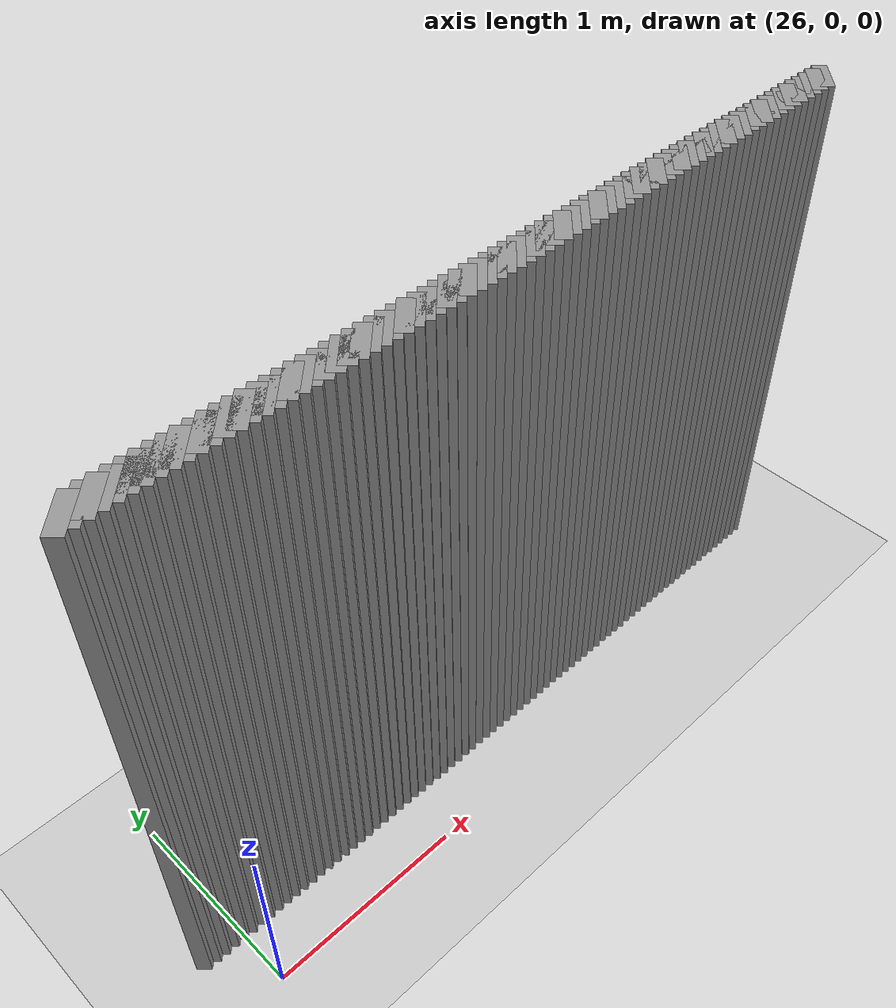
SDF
<sdf version="1.5">
 <world name="default">
  <include><uri>model://ground_plane</uri></include>
  <include><uri>model://sun</uri></include>
  <model name="grey_wall_5279">
   <static>1</static>
   <link name="link">
    <pose>25.85 0.35  1.4 0 0 -0.785398163397</pose>
    <collision name="collision"><geometry><box><size>0.0707106781187 .2  2.8</size></box></geometry></collision>
    <visual name="visual">
     <cast_shadows>0</cast_shadows>
     <geometry><box><size>0.0707106781187 .2  2.8</size></box></geometry>
     <material>
      <script>
       <uri>model://grey_wall/materials/scripts</uri>
       <uri>model://grey_wall/materials/textures</uri>
       <name>vrc/grey_wall</name>
      </script>
     </material>
    </visual>
   </link>
  </model>
  <model name="grey_wall_5280">
   <static>1</static>
   <link name="link">
    <pose>25.9 0.35  1.4 0 0 -0.785398163397</pose>
    <collision name="collision"><geometry><box><size>0.0707106781187 .2  2.8</size></box></geometry></collision>
    <visual name="visual">
     <cast_shadows>0</cast_shadows>
     <geometry><box><size>0.0707106781187 .2  2.8</size></box></geometry>
     <material>
      <script>
       <uri>model://grey_wall/materials/scripts</uri>
       <uri>model://grey_wall/materials/textures</uri>
       <name>vrc/grey_wall</name>
      </script>
     </material>
    </visual>
   </link>
  </model>
  <model name="grey_wall_5281">
   <static>1</static>
   <link name="link">
    <pose>25.95 0.35  1.4 0 0 -0.785398163397</pose>
    <collision name="collision"><geometry><box><size>0.0707106781187 .2  2.8</size></box></geometry></collision>
    <visual name="visual">
     <cast_shadows>0</cast_shadows>
     <geometry><box><size>0.0707106781187 .2  2.8</size></box></geometry>
     <material>
      <script>
       <uri>model://grey_wall/materials/scripts</uri>
       <uri>model://grey_wall/materials/textures</uri>
       <name>vrc/grey_wall</name>
      </script>
     </material>
    </visual>
   </link>
  </model>
  <model name="grey_wall_5282">
   <static>1</static>
   <link name="link">
    <pose>26.0 0.35  1.4 0 0 -0.785398163397</pose>
    <collision name="collision"><geometry><box><size>0.0707106781187 .2  2.8</size></box></geometry></collision>
    <visual name="visual">
     <cast_shadows>0</cast_shadows>
     <geometry><box><size>0.0707106781187 .2  2.8</size></box></geometry>
     <material>
      <script>
       <uri>model://grey_wall/materials/scripts</uri>
       <uri>model://grey_wall/materials/textures</uri>
       <name>vrc/grey_wall</name>
      </script>
     </material>
    </visual>
   </link>
  </model>
  <model name="grey_wall_5283">
   <static>1</static>
   <link name="link">
    <pose>26.05 0.35  1.4 0 0 -0.785398163397</pose>
    <collision name="collision"><geometry><box><size>0.0707106781187 .2  2.8</size></box></geometry></collision>
    <visual name="visual">
     <cast_shadows>0</cast_shadows>
     <geometry><box><size>0.0707106781187 .2  2.8</size></box></geometry>
     <material>
      <script>
       <uri>model://grey_wall/materials/scripts</uri>
       <uri>model://grey_wall/materials/textures</uri>
       <name>vrc/grey_wall</name>
      </script>
     </material>
    </visual>
   </link>
  </model>
  <model name="grey_wall_5284">
   <static>1</static>
   <link name="link">
    <pose>26.1 0.35  1.4 0 0 -0.785398163397</pose>
    <collision name="collision"><geometry><box><size>0.0707106781187 .2  2.8</size></box></geometry></collision>
    <visual name="visual">
     <cast_shadows>0</cast_shadows>
     <geometry><box><size>0.0707106781187 .2  2.8</size></box></geometry>
     <material>
      <script>
       <uri>model://grey_wall/materials/scripts</uri>
       <uri>model://grey_wall/materials/textures</uri>
       <name>vrc/grey_wall</name>
      </script>
     </material>
    </visual>
   </link>
  </model>
  <model name="grey_wall_5285">
   <static>1</static>
   <link name="link">
    <pose>26.15 0.35  1.4 0 0 -0.785398163397</pose>
    <collision name="collision"><geometry><box><size>0.0707106781187 .2  2.8</size></box></geometry></collision>
    <visual name="visual">
     <cast_shadows>0</cast_shadows>
     <geometry><box><size>0.0707106781187 .2  2.8</size></box></geometry>
     <material>
      <script>
       <uri>model://grey_wall/materials/scripts</uri>
       <uri>model://grey_wall/materials/textures</uri>
       <name>vrc/grey_wall</name>
      </script>
     </material>
    </visual>
   </link>
  </model>
  <model name="grey_wall_5286">
   <static>1</static>
   <link name="link">
    <pose>26.2 0.35  1.4 0 0 -0.785398163397</pose>
    <collision name="collision"><geometry><box><size>0.0707106781187 .2  2.8</size></box></geometry></collision>
    <visual name="visual">
     <cast_shadows>0</cast_shadows>
     <geometry><box><size>0.0707106781187 .2  2.8</size></box></geometry>
     <material>
      <script>
       <uri>model://grey_wall/materials/scripts</uri>
       <uri>model://grey_wall/materials/textures</uri>
       <name>vrc/grey_wall</name>
      </script>
     </material>
    </visual>
   </link>
  </model>
  <model name="grey_wall_5287">
   <static>1</static>
   <link name="link">
    <pose>26.25 0.35  1.4 0 0 -0.785398163397</pose>
    <collision name="collision"><geometry><box><size>0.0707106781187 .2  2.8</size></box></geometry></collision>
    <visual name="visual">
     <cast_shadows>0</cast_shadows>
     <geometry><box><size>0.0707106781187 .2  2.8</size></box></geometry>
     <material>
      <script>
       <uri>model://grey_wall/materials/scripts</uri>
       <uri>model://grey_wall/materials/textures</uri>
       <name>vrc/grey_wall</name>
      </script>
     </material>
    </visual>
   </link>
  </model>
  <model name="grey_wall_5288">
   <static>1</static>
   <link name="link">
    <pose>26.3 0.35  1.4 0 0 -0.785398163397</pose>
    <collision name="collision"><geometry><box><size>0.0707106781187 .2  2.8</size></box></geometry></collision>
    <visual name="visual">
     <cast_shadows>0</cast_shadows>
     <geometry><box><size>0.0707106781187 .2  2.8</size></box></geometry>
     <material>
      <script>
       <uri>model://grey_wall/materials/scripts</uri>
       <uri>model://grey_wall/materials/textures</uri>
       <name>vrc/grey_wall</name>
      </script>
     </material>
    </visual>
   </link>
  </model>
  <model name="grey_wall_5289">
   <static>1</static>
   <link name="link">
    <pose>26.35 0.35  1.4 0 0 -0.785398163397</pose>
    <collision name="collision"><geometry><box><size>0.0707106781187 .2  2.8</size></box></geometry></collision>
    <visual name="visual">
     <cast_shadows>0</cast_shadows>
     <geometry><box><size>0.0707106781187 .2  2.8</size></box></geometry>
     <material>
      <script>
       <uri>model://grey_wall/materials/scripts</uri>
       <uri>model://grey_wall/materials/textures</uri>
       <name>vrc/grey_wall</name>
      </script>
     </material>
    </visual>
   </link>
  </model>
  <model name="grey_wall_5290">
   <static>1</static>
   <link name="link">
    <pose>26.4 0.35  1.4 0 0 -0.785398163397</pose>
    <collision name="collision"><geometry><box><size>0.0707106781187 .2  2.8</size></box></geometry></collision>
    <visual name="visual">
     <cast_shadows>0</cast_shadows>
     <geometry><box><size>0.0707106781187 .2  2.8</size></box></geometry>
     <material>
      <script>
       <uri>model://grey_wall/materials/scripts</uri>
       <uri>model://grey_wall/materials/textures</uri>
       <name>vrc/grey_wall</name>
      </script>
     </material>
    </visual>
   </link>
  </model>
  <model name="grey_wall_5291">
   <static>1</static>
   <link name="link">
    <pose>26.45 0.35  1.4 0 0 -0.785398163397</pose>
    <collision name="collision"><geometry><box><size>0.0707106781187 .2  2.8</size></box></geometry></collision>
    <visual name="visual">
     <cast_shadows>0</cast_shadows>
     <geometry><box><size>0.0707106781187 .2  2.8</size></box></geometry>
     <material>
      <script>
       <uri>model://grey_wall/materials/scripts</uri>
       <uri>model://grey_wall/materials/textures</uri>
       <name>vrc/grey_wall</name>
      </script>
     </material>
    </visual>
   </link>
  </model>
  <model name="grey_wall_5292">
   <static>1</static>
   <link name="link">
    <pose>26.5 0.35  1.4 0 0 -0.785398163397</pose>
    <collision name="collision"><geometry><box><size>0.0707106781187 .2  2.8</size></box></geometry></collision>
    <visual name="visual">
     <cast_shadows>0</cast_shadows>
     <geometry><box><size>0.0707106781187 .2  2.8</size></box></geometry>
     <material>
      <script>
       <uri>model://grey_wall/materials/scripts</uri>
       <uri>model://grey_wall/materials/textures</uri>
       <name>vrc/grey_wall</name>
      </script>
     </material>
    </visual>
   </link>
  </model>
  <model name="grey_wall_5293">
   <static>1</static>
   <link name="link">
    <pose>26.55 0.35  1.4 0 0 -0.785398163397</pose>
    <collision name="collision"><geometry><box><size>0.0707106781187 .2  2.8</size></box></geometry></collision>
    <visual name="visual">
     <cast_shadows>0</cast_shadows>
     <geometry><box><size>0.0707106781187 .2  2.8</size></box></geometry>
     <material>
      <script>
       <uri>model://grey_wall/materials/scripts</uri>
       <uri>model://grey_wall/materials/textures</uri>
       <name>vrc/grey_wall</name>
      </script>
     </material>
    </visual>
   </link>
  </model>
  <model name="grey_wall_5294">
   <static>1</static>
   <link name="link">
    <pose>26.6 0.35  1.4 0 0 -0.785398163397</pose>
    <collision name="collision"><geometry><box><size>0.0707106781187 .2  2.8</size></box></geometry></collision>
    <visual name="visual">
     <cast_shadows>0</cast_shadows>
     <geometry><box><size>0.0707106781187 .2  2.8</size></box></geometry>
     <material>
      <script>
       <uri>model://grey_wall/materials/scripts</uri>
       <uri>model://grey_wall/materials/textures</uri>
       <name>vrc/grey_wall</name>
      </script>
     </material>
    </visual>
   </link>
  </model>
  <model name="grey_wall_5295">
   <static>1</static>
   <link name="link">
    <pose>26.65 0.35  1.4 0 0 -0.785398163397</pose>
    <collision name="collision"><geometry><box><size>0.0707106781187 .2  2.8</size></box></geometry></collision>
    <visual name="visual">
     <cast_shadows>0</cast_shadows>
     <geometry><box><size>0.0707106781187 .2  2.8</size></box></geometry>
     <material>
      <script>
       <uri>model://grey_wall/materials/scripts</uri>
       <uri>model://grey_wall/materials/textures</uri>
       <name>vrc/grey_wall</name>
      </script>
     </material>
    </visual>
   </link>
  </model>
  <model name="grey_wall_5296">
   <static>1</static>
   <link name="link">
    <pose>26.7 0.35  1.4 0 0 -0.785398163397</pose>
    <collision name="collision"><geometry><box><size>0.0707106781187 .2  2.8</size></box></geometry></collision>
    <visual name="visual">
     <cast_shadows>0</cast_shadows>
     <geometry><box><size>0.0707106781187 .2  2.8</size></box></geometry>
     <material>
      <script>
       <uri>model://grey_wall/materials/scripts</uri>
       <uri>model://grey_wall/materials/textures</uri>
       <name>vrc/grey_wall</name>
      </script>
     </material>
    </visual>
   </link>
  </model>
  <model name="grey_wall_5297">
   <static>1</static>
   <link name="link">
    <pose>26.75 0.35  1.4 0 0 -0.785398163397</pose>
    <collision name="collision"><geometry><box><size>0.0707106781187 .2  2.8</size></box></geometry></collision>
    <visual name="visual">
     <cast_shadows>0</cast_shadows>
     <geometry><box><size>0.0707106781187 .2  2.8</size></box></geometry>
     <material>
      <script>
       <uri>model://grey_wall/materials/scripts</uri>
       <uri>model://grey_wall/materials/textures</uri>
       <name>vrc/grey_wall</name>
      </script>
     </material>
    </visual>
   </link>
  </model>
  <model name="grey_wall_5298">
   <static>1</static>
   <link name="link">
    <pose>26.8 0.35  1.4 0 0 -0.785398163397</pose>
    <collision name="collision"><geometry><box><size>0.0707106781187 .2  2.8</size></box></geometry></collision>
    <visual name="visual">
     <cast_shadows>0</cast_shadows>
     <geometry><box><size>0.0707106781187 .2  2.8</size></box></geometry>
     <material>
      <script>
       <uri>model://grey_wall/materials/scripts</uri>
       <uri>model://grey_wall/materials/textures</uri>
       <name>vrc/grey_wall</name>
      </script>
     </material>
    </visual>
   </link>
  </model>
  <model name="grey_wall_5299">
   <static>1</static>
   <link name="link">
    <pose>26.85 0.35  1.4 0 0 -0.785398163397</pose>
    <collision name="collision"><geometry><box><size>0.0707106781187 .2  2.8</size></box></geometry></collision>
    <visual name="visual">
     <cast_shadows>0</cast_shadows>
     <geometry><box><size>0.0707106781187 .2  2.8</size></box></geometry>
     <material>
      <script>
       <uri>model://grey_wall/materials/scripts</uri>
       <uri>model://grey_wall/materials/textures</uri>
       <name>vrc/grey_wall</name>
      </script>
     </material>
    </visual>
   </link>
  </model>
  <model name="grey_wall_5300">
   <static>1</static>
   <link name="link">
    <pose>26.9 0.35  1.4 0 0 -0.785398163397</pose>
    <collision name="collision"><geometry><box><size>0.0707106781187 .2  2.8</size></box></geometry></collision>
    <visual name="visual">
     <cast_shadows>0</cast_shadows>
     <geometry><box><size>0.0707106781187 .2  2.8</size></box></geometry>
     <material>
      <script>
       <uri>model://grey_wall/materials/scripts</uri>
       <uri>model://grey_wall/materials/textures</uri>
       <name>vrc/grey_wall</name>
      </script>
     </material>
    </visual>
   </link>
  </model>
  <model name="grey_wall_5301">
   <static>1</static>
   <link name="link">
    <pose>26.95 0.35  1.4 0 0 -0.785398163397</pose>
    <collision name="collision"><geometry><box><size>0.0707106781187 .2  2.8</size></box></geometry></collision>
    <visual name="visual">
     <cast_shadows>0</cast_shadows>
     <geometry><box><size>0.0707106781187 .2  2.8</size></box></geometry>
     <material>
      <script>
       <uri>model://grey_wall/materials/scripts</uri>
       <uri>model://grey_wall/materials/textures</uri>
       <name>vrc/grey_wall</name>
      </script>
     </material>
    </visual>
   </link>
  </model>
  <model name="grey_wall_5302">
   <static>1</static>
   <link name="link">
    <pose>27.0 0.35  1.4 0 0 -0.785398163397</pose>
    <collision name="collision"><geometry><box><size>0.0707106781187 .2  2.8</size></box></geometry></collision>
    <visual name="visual">
     <cast_shadows>0</cast_shadows>
     <geometry><box><size>0.0707106781187 .2  2.8</size></box></geometry>
     <material>
      <script>
       <uri>model://grey_wall/materials/scripts</uri>
       <uri>model://grey_wall/materials/textures</uri>
       <name>vrc/grey_wall</name>
      </script>
     </material>
    </visual>
   </link>
  </model>
  <model name="grey_wall_5303">
   <static>1</static>
   <link name="link">
    <pose>27.05 0.35  1.4 0 0 -0.785398163397</pose>
    <collision name="collision"><geometry><box><size>0.0707106781187 .2  2.8</size></box></geometry></collision>
    <visual name="visual">
     <cast_shadows>0</cast_shadows>
     <geometry><box><size>0.0707106781187 .2  2.8</size></box></geometry>
     <material>
      <script>
       <uri>model://grey_wall/materials/scripts</uri>
       <uri>model://grey_wall/materials/textures</uri>
       <name>vrc/grey_wall</name>
      </script>
     </material>
    </visual>
   </link>
  </model>
  <model name="grey_wall_5304">
   <static>1</static>
   <link name="link">
    <pose>27.1 0.35  1.4 0 0 -0.785398163397</pose>
    <collision name="collision"><geometry><box><size>0.0707106781187 .2  2.8</size></box></geometry></collision>
    <visual name="visual">
     <cast_shadows>0</cast_shadows>
     <geometry><box><size>0.0707106781187 .2  2.8</size></box></geometry>
     <material>
      <script>
       <uri>model://grey_wall/materials/scripts</uri>
       <uri>model://grey_wall/materials/textures</uri>
       <name>vrc/grey_wall</name>
      </script>
     </material>
    </visual>
   </link>
  </model>
  <model name="grey_wall_5305">
   <static>1</static>
   <link name="link">
    <pose>27.15 0.35  1.4 0 0 -0.785398163397</pose>
    <collision name="collision"><geometry><box><size>0.0707106781187 .2  2.8</size></box></geometry></collision>
    <visual name="visual">
     <cast_shadows>0</cast_shadows>
     <geometry><box><size>0.0707106781187 .2  2.8</size></box></geometry>
     <material>
      <script>
       <uri>model://grey_wall/materials/scripts</uri>
       <uri>model://grey_wall/materials/textures</uri>
       <name>vrc/grey_wall</name>
      </script>
     </material>
    </visual>
   </link>
  </model>
  <model name="grey_wall_5306">
   <static>1</static>
   <link name="link">
    <pose>27.2 0.35  1.4 0 0 -0.785398163397</pose>
    <collision name="collision"><geometry><box><size>0.0707106781187 .2  2.8</size></box></geometry></collision>
    <visual name="visual">
     <cast_shadows>0</cast_shadows>
     <geometry><box><size>0.0707106781187 .2  2.8</size></box></geometry>
     <material>
      <script>
       <uri>model://grey_wall/materials/scripts</uri>
       <uri>model://grey_wall/materials/textures</uri>
       <name>vrc/grey_wall</name>
      </script>
     </material>
    </visual>
   </link>
  </model>
  <model name="grey_wall_5307">
   <static>1</static>
   <link name="link">
    <pose>27.25 0.35  1.4 0 0 -0.785398163397</pose>
    <collision name="collision"><geometry><box><size>0.0707106781187 .2  2.8</size></box></geometry></collision>
    <visual name="visual">
     <cast_shadows>0</cast_shadows>
     <geometry><box><size>0.0707106781187 .2  2.8</size></box></geometry>
     <material>
      <script>
       <uri>model://grey_wall/materials/scripts</uri>
       <uri>model://grey_wall/materials/textures</uri>
       <name>vrc/grey_wall</name>
      </script>
     </material>
    </visual>
   </link>
  </model>
  <model name="grey_wall_5308">
   <static>1</static>
   <link name="link">
    <pose>27.3 0.35  1.4 0 0 -0.785398163397</pose>
    <collision name="collision"><geometry><box><size>0.0707106781187 .2  2.8</size></box></geometry></collision>
    <visual name="visual">
     <cast_shadows>0</cast_shadows>
     <geometry><box><size>0.0707106781187 .2  2.8</size></box></geometry>
     <material>
      <script>
       <uri>model://grey_wall/materials/scripts</uri>
       <uri>model://grey_wall/materials/textures</uri>
       <name>vrc/grey_wall</name>
      </script>
     </material>
    </visual>
   </link>
  </model>
  <model name="grey_wall_5309">
   <static>1</static>
   <link name="link">
    <pose>27.35 0.35  1.4 0 0 -0.785398163397</pose>
    <collision name="collision"><geometry><box><size>0.0707106781187 .2  2.8</size></box></geometry></collision>
    <visual name="visual">
     <cast_shadows>0</cast_shadows>
     <geometry><box><size>0.0707106781187 .2  2.8</size></box></geometry>
     <material>
      <script>
       <uri>model://grey_wall/materials/scripts</uri>
       <uri>model://grey_wall/materials/textures</uri>
       <name>vrc/grey_wall</name>
      </script>
     </material>
    </visual>
   </link>
  </model>
  <model name="grey_wall_5310">
   <static>1</static>
   <link name="link">
    <pose>27.4 0.35  1.4 0 0 -0.785398163397</pose>
    <collision name="collision"><geometry><box><size>0.0707106781187 .2  2.8</size></box></geometry></collision>
    <visual name="visual">
     <cast_shadows>0</cast_shadows>
     <geometry><box><size>0.0707106781187 .2  2.8</size></box></geometry>
     <material>
      <script>
       <uri>model://grey_wall/materials/scripts</uri>
       <uri>model://grey_wall/materials/textures</uri>
       <name>vrc/grey_wall</name>
      </script>
     </material>
    </visual>
   </link>
  </model>
  <model name="grey_wall_5311">
   <static>1</static>
   <link name="link">
    <pose>27.45 0.35  1.4 0 0 -0.785398163397</pose>
    <collision name="collision"><geometry><box><size>0.0707106781187 .2  2.8</size></box></geometry></collision>
    <visual name="visual">
     <cast_shadows>0</cast_shadows>
     <geometry><box><size>0.0707106781187 .2  2.8</size></box></geometry>
     <material>
      <script>
       <uri>model://grey_wall/materials/scripts</uri>
       <uri>model://grey_wall/materials/textures</uri>
       <name>vrc/grey_wall</name>
      </script>
     </material>
    </visual>
   </link>
  </model>
  <model name="grey_wall_5312">
   <static>1</static>
   <link name="link">
    <pose>27.5 0.35  1.4 0 0 -0.785398163397</pose>
    <collision name="collision"><geometry><box><size>0.0707106781187 .2  2.8</size></box></geometry></collision>
    <visual name="visual">
     <cast_shadows>0</cast_shadows>
     <geometry><box><size>0.0707106781187 .2  2.8</size></box></geometry>
     <material>
      <script>
       <uri>model://grey_wall/materials/scripts</uri>
       <uri>model://grey_wall/materials/textures</uri>
       <name>vrc/grey_wall</name>
      </script>
     </material>
    </visual>
   </link>
  </model>
  <model name="grey_wall_5313">
   <static>1</static>
   <link name="link">
    <pose>27.55 0.35  1.4 0 0 -0.785398163397</pose>
    <collision name="collision"><geometry><box><size>0.0707106781187 .2  2.8</size></box></geometry></collision>
    <visual name="visual">
     <cast_shadows>0</cast_shadows>
     <geometry><box><size>0.0707106781187 .2  2.8</size></box></geometry>
     <material>
      <script>
       <uri>model://grey_wall/materials/scripts</uri>
       <uri>model://grey_wall/materials/textures</uri>
       <name>vrc/grey_wall</name>
      </script>
     </material>
    </visual>
   </link>
  </model>
  <model name="grey_wall_5314">
   <static>1</static>
   <link name="link">
    <pose>27.6 0.35  1.4 0 0 -0.785398163397</pose>
    <collision name="collision"><geometry><box><size>0.0707106781187 .2  2.8</size></box></geometry></collision>
    <visual name="visual">
     <cast_shadows>0</cast_shadows>
     <geometry><box><size>0.0707106781187 .2  2.8</size></box></geometry>
     <material>
      <script>
       <uri>model://grey_wall/materials/scripts</uri>
       <uri>model://grey_wall/materials/textures</uri>
       <name>vrc/grey_wall</name>
      </script>
     </material>
    </visual>
   </link>
  </model>
  <model name="grey_wall_5315">
   <static>1</static>
   <link name="link">
    <pose>27.65 0.35  1.4 0 0 -0.785398163397</pose>
    <collision name="collision"><geometry><box><size>0.0707106781187 .2  2.8</size></box></geometry></collision>
    <visual name="visual">
     <cast_shadows>0</cast_shadows>
     <geometry><box><size>0.0707106781187 .2  2.8</size></box></geometry>
     <material>
      <script>
       <uri>model://grey_wall/materials/scripts</uri>
       <uri>model://grey_wall/materials/textures</uri>
       <name>vrc/grey_wall</name>
      </script>
     </material>
    </visual>
   </link>
  </model>
  <model name="grey_wall_5316">
   <static>1</static>
   <link name="link">
    <pose>27.7 0.35  1.4 0 0 -0.785398163397</pose>
    <collision name="collision"><geometry><box><size>0.0707106781187 .2  2.8</size></box></geometry></collision>
    <visual name="visual">
     <cast_shadows>0</cast_shadows>
     <geometry><box><size>0.0707106781187 .2  2.8</size></box></geometry>
     <material>
      <script>
       <uri>model://grey_wall/materials/scripts</uri>
       <uri>model://grey_wall/materials/textures</uri>
       <name>vrc/grey_wall</name>
      </script>
     </material>
    </visual>
   </link>
  </model>
  <model name="grey_wall_5317">
   <static>1</static>
   <link name="link">
    <pose>27.75 0.35  1.4 0 0 -0.785398163397</pose>
    <collision name="collision"><geometry><box><size>0.0707106781187 .2  2.8</size></box></geometry></collision>
    <visual name="visual">
     <cast_shadows>0</cast_shadows>
     <geometry><box><size>0.0707106781187 .2  2.8</size></box></geometry>
     <material>
      <script>
       <uri>model://grey_wall/materials/scripts</uri>
       <uri>model://grey_wall/materials/textures</uri>
       <name>vrc/grey_wall</name>
      </script>
     </material>
    </visual>
   </link>
  </model>
  <model name="grey_wall_5318">
   <static>1</static>
   <link name="link">
    <pose>27.8 0.35  1.4 0 0 -0.785398163397</pose>
    <collision name="collision"><geometry><box><size>0.0707106781187 .2  2.8</size></box></geometry></collision>
    <visual name="visual">
     <cast_shadows>0</cast_shadows>
     <geometry><box><size>0.0707106781187 .2  2.8</size></box></geometry>
     <material>
      <script>
       <uri>model://grey_wall/materials/scripts</uri>
       <uri>model://grey_wall/materials/textures</uri>
       <name>vrc/grey_wall</name>
      </script>
     </material>
    </visual>
   </link>
  </model>
  <model name="grey_wall_5319">
   <static>1</static>
   <link name="link">
    <pose>27.85 0.35  1.4 0 0 -0.785398163397</pose>
    <collision name="collision"><geometry><box><size>0.0707106781187 .2  2.8</size></box></geometry></collision>
    <visual name="visual">
     <cast_shadows>0</cast_shadows>
     <geometry><box><size>0.0707106781187 .2  2.8</size></box></geometry>
     <material>
      <script>
       <uri>model://grey_wall/materials/scripts</uri>
       <uri>model://grey_wall/materials/textures</uri>
       <name>vrc/grey_wall</name>
      </script>
     </material>
    </visual>
   </link>
  </model>
  <model name="grey_wall_5320">
   <static>1</static>
   <link name="link">
    <pose>27.9 0.35  1.4 0 0 -0.785398163397</pose>
    <collision name="collision"><geometry><box><size>0.0707106781187 .2  2.8</size></box></geometry></collision>
    <visual name="visual">
     <cast_shadows>0</cast_shadows>
     <geometry><box><size>0.0707106781187 .2  2.8</size></box></geometry>
     <material>
      <script>
       <uri>model://grey_wall/materials/scripts</uri>
       <uri>model://grey_wall/materials/textures</uri>
       <name>vrc/grey_wall</name>
      </script>
     </material>
    </visual>
   </link>
  </model>
  <model name="grey_wall_5321">
   <static>1</static>
   <link name="link">
    <pose>27.95 0.35  1.4 0 0 -0.785398163397</pose>
    <collision name="collision"><geometry><box><size>0.0707106781187 .2  2.8</size></box></geometry></collision>
    <visual name="visual">
     <cast_shadows>0</cast_shadows>
     <geometry><box><size>0.0707106781187 .2  2.8</size></box></geometry>
     <material>
      <script>
       <uri>model://grey_wall/materials/scripts</uri>
       <uri>model://grey_wall/materials/textures</uri>
       <name>vrc/grey_wall</name>
      </script>
     </material>
    </visual>
   </link>
  </model>
  <model name="grey_wall_5322">
   <static>1</static>
   <link name="link">
    <pose>28.0 0.35  1.4 0 0 -0.785398163397</pose>
    <collision name="collision"><geometry><box><size>0.0707106781187 .2  2.8</size></box></geometry></collision>
    <visual name="visual">
     <cast_shadows>0</cast_shadows>
     <geometry><box><size>0.0707106781187 .2  2.8</size></box></geometry>
     <material>
      <script>
       <uri>model://grey_wall/materials/scripts</uri>
       <uri>model://grey_wall/materials/textures</uri>
       <name>vrc/grey_wall</name>
      </script>
     </material>
    </visual>
   </link>
  </model>
  <model name="grey_wall_5323">
   <static>1</static>
   <link name="link">
    <pose>28.05 0.35  1.4 0 0 -0.785398163397</pose>
    <collision name="collision"><geometry><box><size>0.0707106781187 .2  2.8</size></box></geometry></collision>
    <visual name="visual">
     <cast_shadows>0</cast_shadows>
     <geometry><box><size>0.0707106781187 .2  2.8</size></box></geometry>
     <material>
      <script>
       <uri>model://grey_wall/materials/scripts</uri>
       <uri>model://grey_wall/materials/textures</uri>
       <name>vrc/grey_wall</name>
      </script>
     </material>
    </visual>
   </link>
  </model>
  <model name="grey_wall_5324">
   <static>1</static>
   <link name="link">
    <pose>28.1 0.35  1.4 0 0 -0.785398163397</pose>
    <collision name="collision"><geometry><box><size>0.0707106781187 .2  2.8</size></box></geometry></collision>
    <visual name="visual">
     <cast_shadows>0</cast_shadows>
     <geometry><box><size>0.0707106781187 .2  2.8</size></box></geometry>
     <material>
      <script>
       <uri>model://grey_wall/materials/scripts</uri>
       <uri>model://grey_wall/materials/textures</uri>
       <name>vrc/grey_wall</name>
      </script>
     </material>
    </visual>
   </link>
  </model>
  <model name="grey_wall_5325">
   <static>1</static>
   <link name="link">
    <pose>28.15 0.35  1.4 0 0 -0.785398163397</pose>
    <collision name="collision"><geometry><box><size>0.0707106781187 .2  2.8</size></box></geometry></collision>
    <visual name="visual">
     <cast_shadows>0</cast_shadows>
     <geometry><box><size>0.0707106781187 .2  2.8</size></box></geometry>
     <material>
      <script>
       <uri>model://grey_wall/materials/scripts</uri>
       <uri>model://grey_wall/materials/textures</uri>
       <name>vrc/grey_wall</name>
      </script>
     </material>
    </visual>
   </link>
  </model>
  <model name="grey_wall_5326">
   <static>1</static>
   <link name="link">
    <pose>28.2 0.35  1.4 0 0 -0.785398163397</pose>
    <collision name="collision"><geometry><box><size>0.0707106781187 .2  2.8</size></box></geometry></collision>
    <visual name="visual">
     <cast_shadows>0</cast_shadows>
     <geometry><box><size>0.0707106781187 .2  2.8</size></box></geometry>
     <material>
      <script>
       <uri>model://grey_wall/materials/scripts</uri>
       <uri>model://grey_wall/materials/textures</uri>
       <name>vrc/grey_wall</name>
      </script>
     </material>
    </visual>
   </link>
  </model>
  <model name="grey_wall_5327">
   <static>1</static>
   <link name="link">
    <pose>28.25 0.35  1.4 0 0 -0.785398163397</pose>
    <collision name="collision"><geometry><box><size>0.0707106781187 .2  2.8</size></box></geometry></collision>
    <visual name="visual">
     <cast_shadows>0</cast_shadows>
     <geometry><box><size>0.0707106781187 .2  2.8</size></box></geometry>
     <material>
      <script>
       <uri>model://grey_wall/materials/scripts</uri>
       <uri>model://grey_wall/materials/textures</uri>
       <name>vrc/grey_wall</name>
      </script>
     </material>
    </visual>
   </link>
  </model>
  <model name="grey_wall_5328">
   <static>1</static>
   <link name="link">
    <pose>28.3 0.35  1.4 0 0 -0.785398163397</pose>
    <collision name="collision"><geometry><box><size>0.0707106781187 .2  2.8</size></box></geometry></collision>
    <visual name="visual">
     <cast_shadows>0</cast_shadows>
     <geometry><box><size>0.0707106781187 .2  2.8</size></box></geometry>
     <material>
      <script>
       <uri>model://grey_wall/materials/scripts</uri>
       <uri>model://grey_wall/materials/textures</uri>
       <name>vrc/grey_wall</name>
      </script>
     </material>
    </visual>
   </link>
  </model>
  <model name="grey_wall_5329">
   <static>1</static>
   <link name="link">
    <pose>28.35 0.35  1.4 0 0 -0.785398163397</pose>
    <collision name="collision"><geometry><box><size>0.0707106781187 .2  2.8</size></box></geometry></collision>
    <visual name="visual">
     <cast_shadows>0</cast_shadows>
     <geometry><box><size>0.0707106781187 .2  2.8</size></box></geometry>
     <material>
      <script>
       <uri>model://grey_wall/materials/scripts</uri>
       <uri>model://grey_wall/materials/textures</uri>
       <name>vrc/grey_wall</name>
      </script>
     </material>
    </visual>
   </link>
  </model>
  <model name="grey_wall_5330">
   <static>1</static>
   <link name="link">
    <pose>28.4 0.35  1.4 0 0 -0.785398163397</pose>
    <collision name="collision"><geometry><box><size>0.0707106781187 .2  2.8</size></box></geometry></collision>
    <visual name="visual">
     <cast_shadows>0</cast_shadows>
     <geometry><box><size>0.0707106781187 .2  2.8</size></box></geometry>
     <material>
      <script>
       <uri>model://grey_wall/materials/scripts</uri>
       <uri>model://grey_wall/materials/textures</uri>
       <name>vrc/grey_wall</name>
      </script>
     </material>
    </visual>
   </link>
  </model>
  <model name="grey_wall_5331">
   <static>1</static>
   <link name="link">
    <pose>28.45 0.35  1.4 0 0 -0.785398163397</pose>
    <collision name="collision"><geometry><box><size>0.0707106781187 .2  2.8</size></box></geometry></collision>
    <visual name="visual">
     <cast_shadows>0</cast_shadows>
     <geometry><box><size>0.0707106781187 .2  2.8</size></box></geometry>
     <material>
      <script>
       <uri>model://grey_wall/materials/scripts</uri>
       <uri>model://grey_wall/materials/textures</uri>
       <name>vrc/grey_wall</name>
      </script>
     </material>
    </visual>
   </link>
  </model>
  <model name="grey_wall_5332">
   <static>1</static>
   <link name="link">
    <pose>28.5 0.35  1.4 0 0 -0.785398163397</pose>
    <collision name="collision"><geometry><box><size>0.0707106781187 .2  2.8</size></box></geometry></collision>
    <visual name="visual">
     <cast_shadows>0</cast_shadows>
     <geometry><box><size>0.0707106781187 .2  2.8</size></box></geometry>
     <material>
      <script>
       <uri>model://grey_wall/materials/scripts</uri>
       <uri>model://grey_wall/materials/textures</uri>
       <name>vrc/grey_wall</name>
      </script>
     </material>
    </visual>
   </link>
  </model>
  <model name="grey_wall_5333">
   <static>1</static>
   <link name="link">
    <pose>28.55 0.35  1.4 0 0 -0.785398163397</pose>
    <collision name="collision"><geometry><box><size>0.0707106781187 .2  2.8</size></box></geometry></collision>
    <visual name="visual">
     <cast_shadows>0</cast_shadows>
     <geometry><box><size>0.0707106781187 .2  2.8</size></box></geometry>
     <material>
      <script>
       <uri>model://grey_wall/materials/scripts</uri>
       <uri>model://grey_wall/materials/textures</uri>
       <name>vrc/grey_wall</name>
      </script>
     </material>
    </visual>
   </link>
  </model>
  <model name="grey_wall_5334">
   <static>1</static>
   <link name="link">
    <pose>28.6 0.35  1.4 0 0 -0.785398163397</pose>
    <collision name="collision"><geometry><box><size>0.0707106781187 .2  2.8</size></box></geometry></collision>
    <visual name="visual">
     <cast_shadows>0</cast_shadows>
     <geometry><box><size>0.0707106781187 .2  2.8</size></box></geometry>
     <material>
      <script>
       <uri>model://grey_wall/materials/scripts</uri>
       <uri>model://grey_wall/materials/textures</uri>
       <name>vrc/grey_wall</name>
      </script>
     </material>
    </visual>
   </link>
  </model>
  <model name="grey_wall_5335">
   <static>1</static>
   <link name="link">
    <pose>28.65 0.35  1.4 0 0 -0.785398163397</pose>
    <collision name="collision"><geometry><box><size>0.0707106781187 .2  2.8</size></box></geometry></collision>
    <visual name="visual">
     <cast_shadows>0</cast_shadows>
     <geometry><box><size>0.0707106781187 .2  2.8</size></box></geometry>
     <material>
      <script>
       <uri>model://grey_wall/materials/scripts</uri>
       <uri>model://grey_wall/materials/textures</uri>
       <name>vrc/grey_wall</name>
      </script>
     </material>
    </visual>
   </link>
  </model>
  <model name="grey_wall_5336">
   <static>1</static>
   <link name="link">
    <pose>28.7 0.35  1.4 0 0 -0.785398163397</pose>
    <collision name="collision"><geometry><box><size>0.0707106781187 .2  2.8</size></box></geometry></collision>
    <visual name="visual">
     <cast_shadows>0</cast_shadows>
     <geometry><box><size>0.0707106781187 .2  2.8</size></box></geometry>
     <material>
      <script>
       <uri>model://grey_wall/materials/scripts</uri>
       <uri>model://grey_wall/materials/textures</uri>
       <name>vrc/grey_wall</name>
      </script>
     </material>
    </visual>
   </link>
  </model>
  <model name="grey_wall_5337">
   <static>1</static>
   <link name="link">
    <pose>28.75 0.35  1.4 0 0 -0.785398163397</pose>
    <collision name="collision"><geometry><box><size>0.0707106781187 .2  2.8</size></box></geometry></collision>
    <visual name="visual">
     <cast_shadows>0</cast_shadows>
     <geometry><box><size>0.0707106781187 .2  2.8</size></box></geometry>
     <material>
      <script>
       <uri>model://grey_wall/materials/scripts</uri>
       <uri>model://grey_wall/materials/textures</uri>
       <name>vrc/grey_wall</name>
      </script>
     </material>
    </visual>
   </link>
  </model>
  <model name="grey_wall_5338">
   <static>1</static>
   <link name="link">
    <pose>28.8 0.35  1.4 0 0 -0.785398163397</pose>
    <collision name="collision"><geometry><box><size>0.0707106781187 .2  2.8</size></box></geometry></collision>
    <visual name="visual">
     <cast_shadows>0</cast_shadows>
     <geometry><box><size>0.0707106781187 .2  2.8</size></box></geometry>
     <material>
      <script>
       <uri>model://grey_wall/materials/scripts</uri>
       <uri>model://grey_wall/materials/textures</uri>
       <name>vrc/grey_wall</name>
      </script>
     </material>
    </visual>
   </link>
  </model>
  <model name="grey_wall_5339">
   <static>1</static>
   <link name="link">
    <pose>28.85 0.35  1.4 0 0 -0.785398163397</pose>
    <collision name="collision"><geometry><box><size>0.0707106781187 .2  2.8</size></box></geometry></collision>
    <visual name="visual">
     <cast_shadows>0</cast_shadows>
     <geometry><box><size>0.0707106781187 .2  2.8</size></box></geometry>
     <material>
      <script>
       <uri>model://grey_wall/materials/scripts</uri>
       <uri>model://grey_wall/materials/textures</uri>
       <name>vrc/grey_wall</name>
      </script>
     </material>
    </visual>
   </link>
  </model>
  <model name="grey_wall_5340">
   <static>1</static>
   <link name="link">
    <pose>28.9 0.35  1.4 0 0 -0.785398163397</pose>
    <collision name="collision"><geometry><box><size>0.0707106781187 .2  2.8</size></box></geometry></collision>
    <visual name="visual">
     <cast_shadows>0</cast_shadows>
     <geometry><box><size>0.0707106781187 .2  2.8</size></box></geometry>
     <material>
      <script>
       <uri>model://grey_wall/materials/scripts</uri>
       <uri>model://grey_wall/materials/textures</uri>
       <name>vrc/grey_wall</name>
      </script>
     </material>
    </visual>
   </link>
  </model>
  <model name="grey_wall_5341">
   <static>1</static>
   <link name="link">
    <pose>28.95 0.35  1.4 0 0 -0.785398163397</pose>
    <collision name="collision"><geometry><box><size>0.0707106781187 .2  2.8</size></box></geometry></collision>
    <visual name="visual">
     <cast_shadows>0</cast_shadows>
     <geometry><box><size>0.0707106781187 .2  2.8</size></box></geometry>
     <material>
      <script>
       <uri>model://grey_wall/materials/scripts</uri>
       <uri>model://grey_wall/materials/textures</uri>
       <name>vrc/grey_wall</name>
      </script>
     </material>
    </visual>
   </link>
  </model>
  <model name="grey_wall_5342">
   <static>1</static>
   <link name="link">
    <pose>29.0 0.35  1.4 0 0 -0.785398163397</pose>
    <collision name="collision"><geometry><box><size>0.0707106781187 .2  2.8</size></box></geometry></collision>
    <visual name="visual">
     <cast_shadows>0</cast_shadows>
     <geometry><box><size>0.0707106781187 .2  2.8</size></box></geometry>
     <material>
      <script>
       <uri>model://grey_wall/materials/scripts</uri>
       <uri>model://grey_wall/materials/textures</uri>
       <name>vrc/grey_wall</name>
      </script>
     </material>
    </visual>
   </link>
  </model>
  <model name="grey_wall_5343">
   <static>1</static>
   <link name="link">
    <pose>29.05 0.35  1.4 0 0 -0.785398163397</pose>
    <collision name="collision"><geometry><box><size>0.0707106781187 .2  2.8</size></box></geometry></collision>
    <visual name="visual">
     <cast_shadows>0</cast_shadows>
     <geometry><box><size>0.0707106781187 .2  2.8</size></box></geometry>
     <material>
      <script>
       <uri>model://grey_wall/materials/scripts</uri>
       <uri>model://grey_wall/materials/textures</uri>
       <name>vrc/grey_wall</name>
      </script>
     </material>
    </visual>
   </link>
  </model>
  <model name="grey_wall_5344">
   <static>1</static>
   <link name="link">
    <pose>29.1 0.35  1.4 0 0 -0.785398163397</pose>
    <collision name="collision"><geometry><box><size>0.0707106781187 .2  2.8</size></box></geometry></collision>
    <visual name="visual">
     <cast_shadows>0</cast_shadows>
     <geometry><box><size>0.0707106781187 .2  2.8</size></box></geometry>
     <material>
      <script>
       <uri>model://grey_wall/materials/scripts</uri>
       <uri>model://grey_wall/materials/textures</uri>
       <name>vrc/grey_wall</name>
      </script>
     </material>
    </visual>
   </link>
  </model>
  <model name="grey_wall_5345">
   <static>1</static>
   <link name="link">
    <pose>29.15 0.35  1.4 0 0 -0.785398163397</pose>
    <collision name="collision"><geometry><box><size>0.0707106781187 .2  2.8</size></box></geometry></collision>
    <visual name="visual">
     <cast_shadows>0</cast_shadows>
     <geometry><box><size>0.0707106781187 .2  2.8</size></box></geometry>
     <material>
      <script>
       <uri>model://grey_wall/materials/scripts</uri>
       <uri>model://grey_wall/materials/textures</uri>
       <name>vrc/grey_wall</name>
      </script>
     </material>
    </visual>
   </link>
  </model>
  <model name="grey_wall_5346">
   <static>1</static>
   <link name="link">
    <pose>29.2 0.35  1.4 0 0 -0.785398163397</pose>
    <collision name="collision"><geometry><box><size>0.0707106781187 .2  2.8</size></box></geometry></collision>
    <visual name="visual">
     <cast_shadows>0</cast_shadows>
     <geometry><box><size>0.0707106781187 .2  2.8</size></box></geometry>
     <material>
      <script>
       <uri>model://grey_wall/materials/scripts</uri>
       <uri>model://grey_wall/materials/textures</uri>
       <name>vrc/grey_wall</name>
      </script>
     </material>
    </visual>
   </link>
  </model>
  <model name="grey_wall_5347">
   <static>1</static>
   <link name="link">
    <pose>29.25 0.35  1.4 0 0 -0.785398163397</pose>
    <collision name="collision"><geometry><box><size>0.0707106781187 .2  2.8</size></box></geometry></collision>
    <visual name="visual">
     <cast_shadows>0</cast_shadows>
     <geometry><box><size>0.0707106781187 .2  2.8</size></box></geometry>
     <material>
      <script>
       <uri>model://grey_wall/materials/scripts</uri>
       <uri>model://grey_wall/materials/textures</uri>
       <name>vrc/grey_wall</name>
      </script>
     </material>
    </visual>
   </link>
  </model>
  <model name="grey_wall_5348">
   <static>1</static>
   <link name="link">
    <pose>29.3 0.35  1.4 0 0 -0.785398163397</pose>
    <collision name="collision"><geometry><box><size>0.0707106781187 .2  2.8</size></box></geometry></collision>
    <visual name="visual">
     <cast_shadows>0</cast_shadows>
     <geometry><box><size>0.0707106781187 .2  2.8</size></box></geometry>
     <material>
      <script>
       <uri>model://grey_wall/materials/scripts</uri>
       <uri>model://grey_wall/materials/textures</uri>
       <name>vrc/grey_wall</name>
      </script>
     </material>
    </visual>
   </link>
  </model>
  <model name="grey_wall_5349">
   <static>1</static>
   <link name="link">
    <pose>29.35 0.35  1.4 0 0 -0.785398163397</pose>
    <collision name="collision"><geometry><box><size>0.0707106781187 .2  2.8</size></box></geometry></collision>
    <visual name="visual">
     <cast_shadows>0</cast_shadows>
     <geometry><box><size>0.0707106781187 .2  2.8</size></box></geometry>
     <material>
      <script>
       <uri>model://grey_wall/materials/scripts</uri>
       <uri>model://grey_wall/materials/textures</uri>
       <name>vrc/grey_wall</name>
      </script>
     </material>
    </visual>
   </link>
  </model>
  <model name="grey_wall_5350">
   <static>1</static>
   <link name="link">
    <pose>29.4 0.35  1.4 0 0 -0.785398163397</pose>
    <collision name="collision"><geometry><box><size>0.0707106781187 .2  2.8</size></box></geometry></collision>
    <visual name="visual">
     <cast_shadows>0</cast_shadows>
     <geometry><box><size>0.0707106781187 .2  2.8</size></box></geometry>
     <material>
      <script>
       <uri>model://grey_wall/materials/scripts</uri>
       <uri>model://grey_wall/materials/textures</uri>
       <name>vrc/grey_wall</name>
      </script>
     </material>
    </visual>
   </link>
  </model>
  <model name="grey_wall_5351">
   <static>1</static>
   <link name="link">
    <pose>29.45 0.35  1.4 0 0 -0.785398163397</pose>
    <collision name="collision"><geometry><box><size>0.0707106781187 .2  2.8</size></box></geometry></collision>
    <visual name="visual">
     <cast_shadows>0</cast_shadows>
     <geometry><box><size>0.0707106781187 .2  2.8</size></box></geometry>
     <material>
      <script>
       <uri>model://grey_wall/materials/scripts</uri>
       <uri>model://grey_wall/materials/textures</uri>
       <name>vrc/grey_wall</name>
      </script>
     </material>
    </visual>
   </link>
  </model>
  <model name="grey_wall_5352">
   <static>1</static>
   <link name="link">
    <pose>29.5 0.35  1.4 0 0 -0.785398163397</pose>
    <collision name="collision"><geometry><box><size>0.0707106781187 .2  2.8</size></box></geometry></collision>
    <visual name="visual">
     <cast_shadows>0</cast_shadows>
     <geometry><box><size>0.0707106781187 .2  2.8</size></box></geometry>
     <material>
      <script>
       <uri>model://grey_wall/materials/scripts</uri>
       <uri>model://grey_wall/materials/textures</uri>
       <name>vrc/grey_wall</name>
      </script>
     </material>
    </visual>
   </link>
  </model>
  <model name="grey_wall_5353">
   <static>1</static>
   <link name="link">
    <pose>29.55 0.35  1.4 0 0 -0.785398163397</pose>
    <collision name="collision"><geometry><box><size>0.0707106781187 .2  2.8</size></box></geometry></collision>
    <visual name="visual">
     <cast_shadows>0</cast_shadows>
     <geometry><box><size>0.0707106781187 .2  2.8</size></box></geometry>
     <material>
      <script>
       <uri>model://grey_wall/materials/scripts</uri>
       <uri>model://grey_wall/materials/textures</uri>
       <name>vrc/grey_wall</name>
      </script>
     </material>
    </visual>
   </link>
  </model>
  <model name="grey_wall_5354">
   <static>1</static>
   <link name="link">
    <pose>29.6 0.35  1.4 0 0 -0.785398163397</pose>
    <collision name="collision"><geometry><box><size>0.0707106781187 .2  2.8</size></box></geometry></collision>
    <visual name="visual">
     <cast_shadows>0</cast_shadows>
     <geometry><box><size>0.0707106781187 .2  2.8</size></box></geometry>
     <material>
      <script>
       <uri>model://grey_wall/materials/scripts</uri>
       <uri>model://grey_wall/materials/textures</uri>
       <name>vrc/grey_wall</name>
      </script>
     </material>
    </visual>
   </link>
  </model>
  <model name="grey_wall_5355">
   <static>1</static>
   <link name="link">
    <pose>29.65 0.35  1.4 0 0 -0.785398163397</pose>
    <collision name="collision"><geometry><box><size>0.0707106781187 .2  2.8</size></box></geometry></collision>
    <visual name="visual">
     <cast_shadows>0</cast_shadows>
     <geometry><box><size>0.0707106781187 .2  2.8</size></box></geometry>
     <material>
      <script>
       <uri>model://grey_wall/materials/scripts</uri>
       <uri>model://grey_wall/materials/textures</uri>
       <name>vrc/grey_wall</name>
      </script>
     </material>
    </visual>
   </link>
  </model>
  <model name="grey_wall_5356">
   <static>1</static>
   <link name="link">
    <pose>29.7 0.35  1.4 0 0 -0.785398163397</pose>
    <collision name="collision"><geometry><box><size>0.0707106781187 .2  2.8</size></box></geometry></collision>
    <visual name="visual">
     <cast_shadows>0</cast_shadows>
     <geometry><box><size>0.0707106781187 .2  2.8</size></box></geometry>
     <material>
      <script>
       <uri>model://grey_wall/materials/scripts</uri>
       <uri>model://grey_wall/materials/textures</uri>
       <name>vrc/grey_wall</name>
      </script>
     </material>
    </visual>
   </link>
  </model>
 </world>
</sdf>
